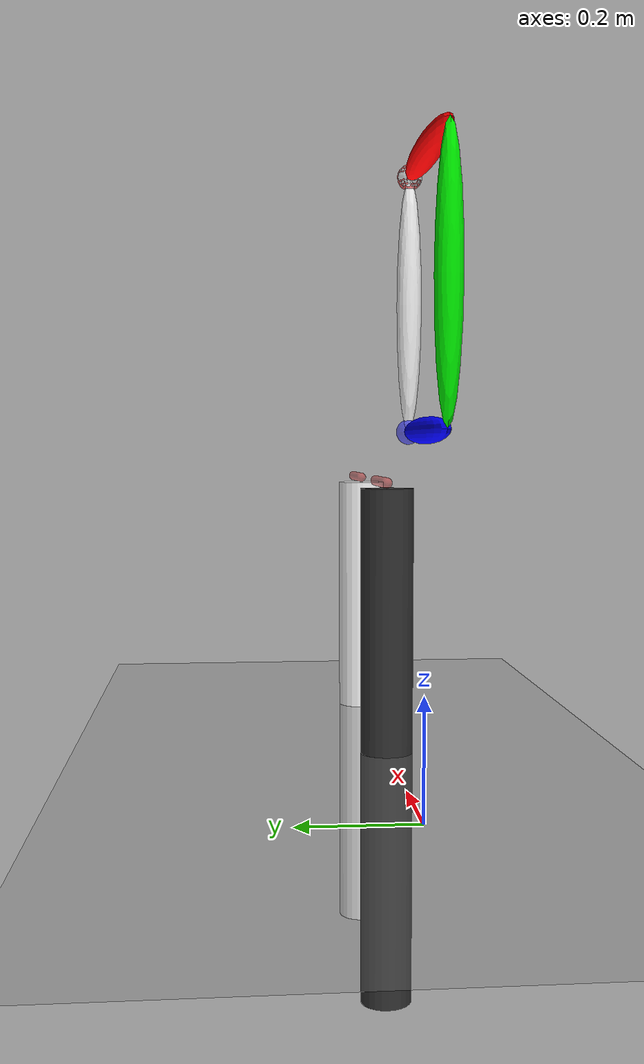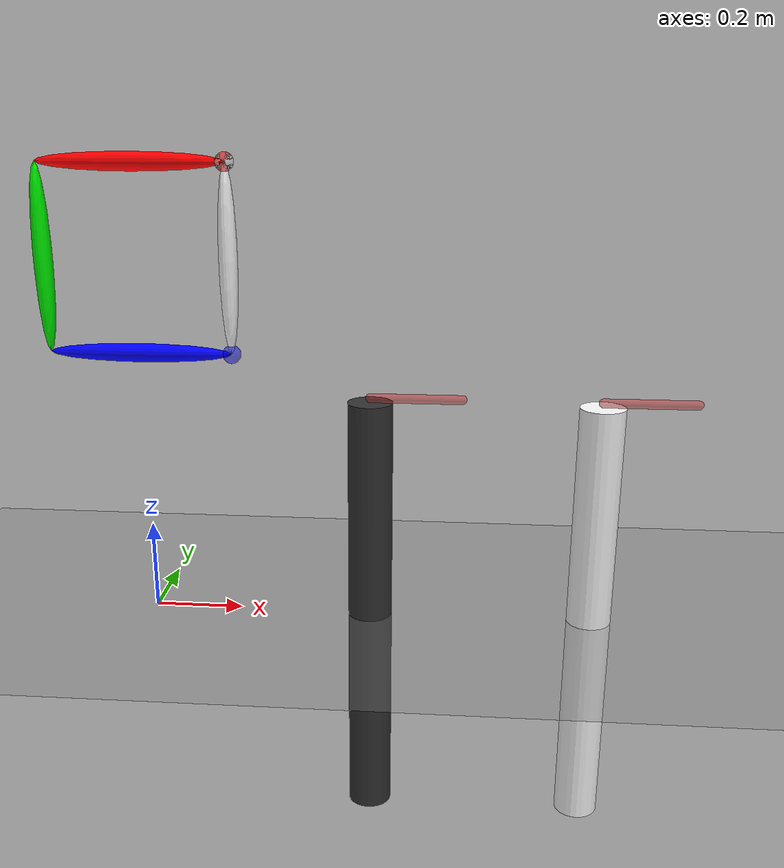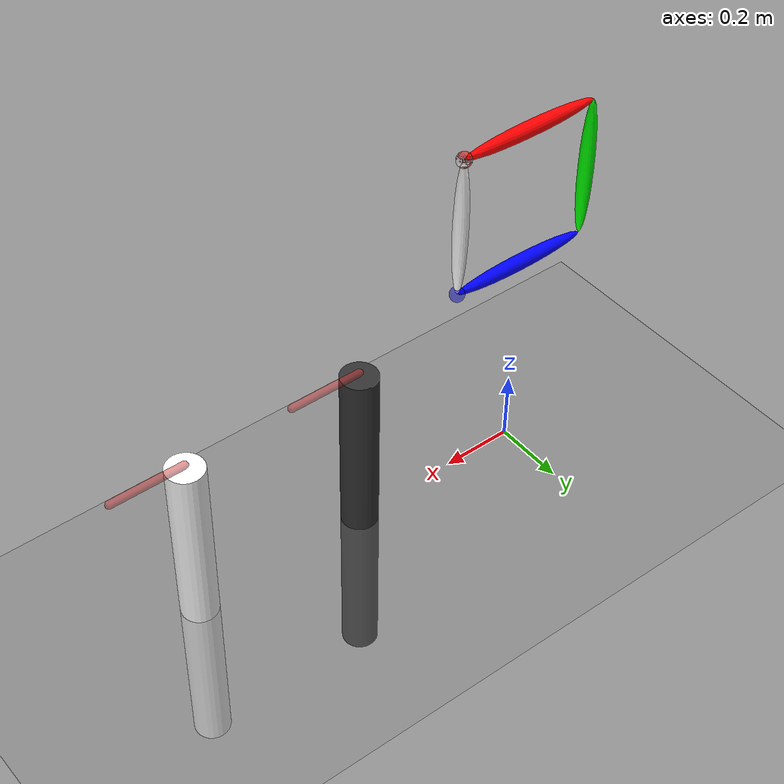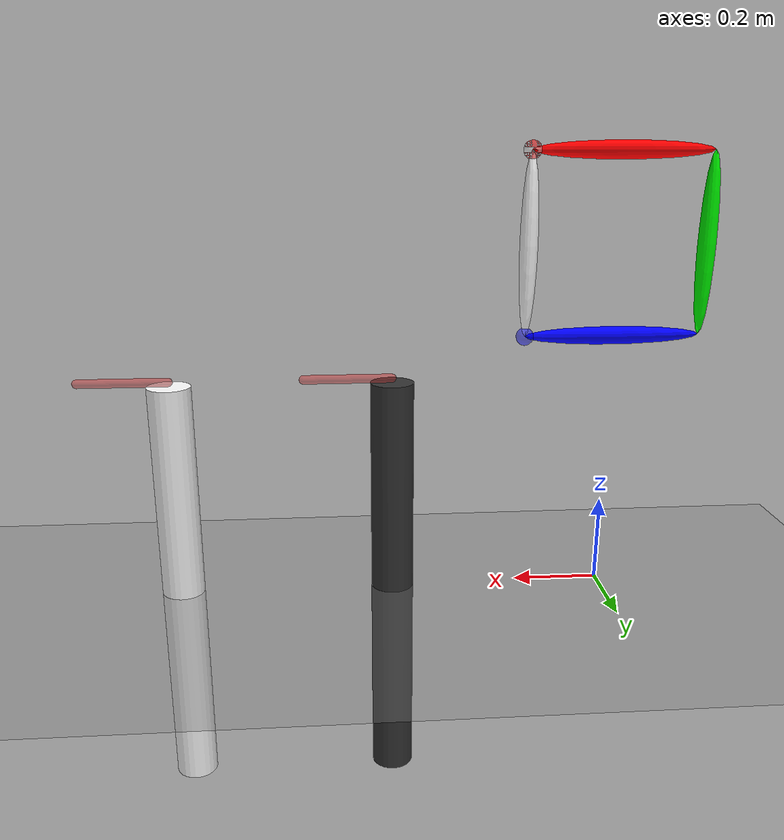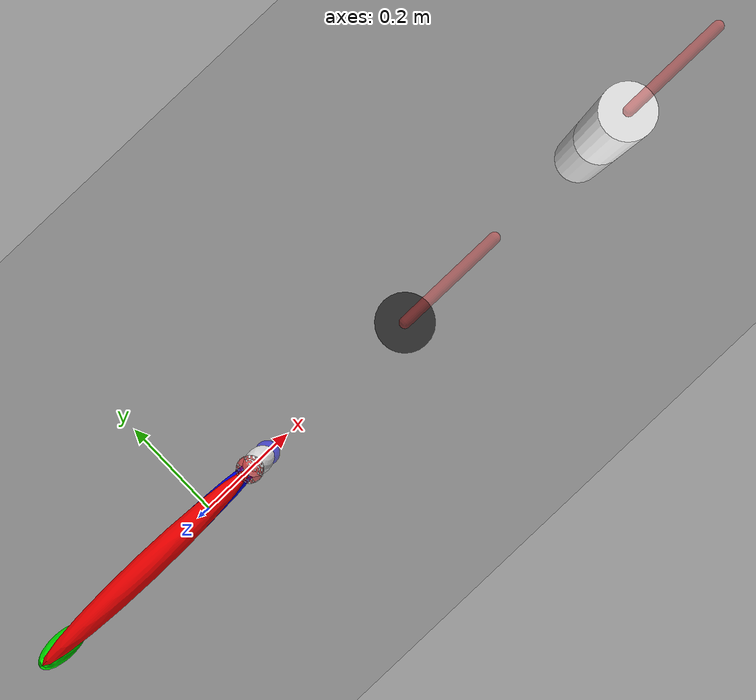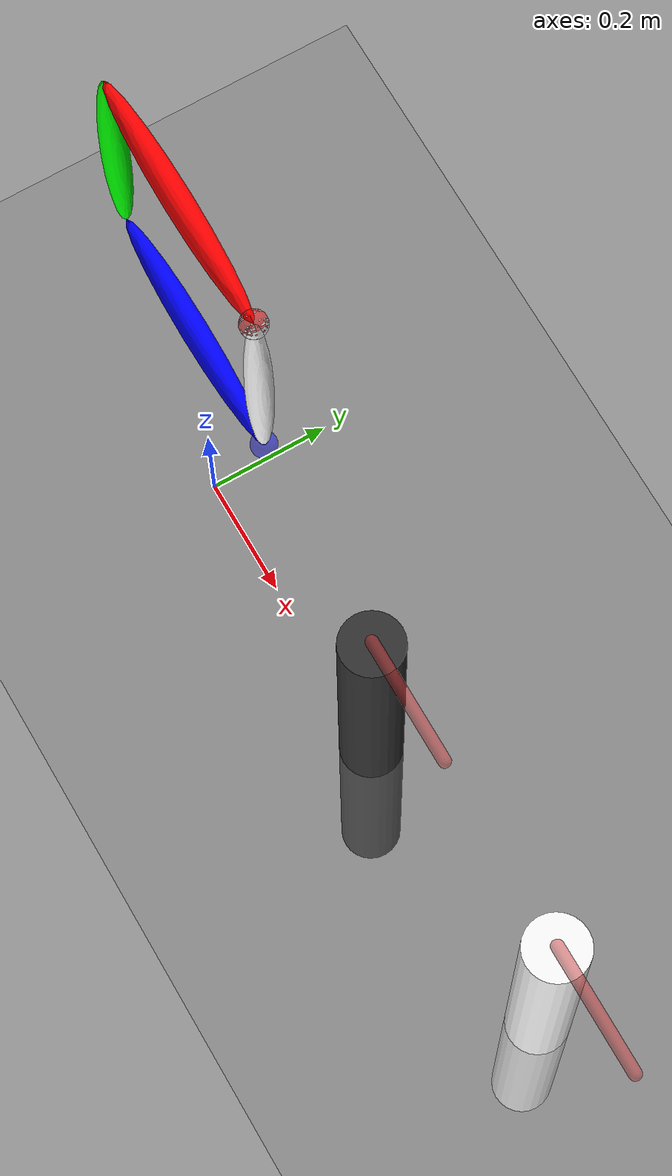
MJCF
<mujoco>
    <asset>
        <mesh name="tetrahedron" vertex="0 0 0 1 0 0 0 1 0 0 0 1" />
        <texture type="skybox" file="../asset/desert.png"
            gridsize="3 4" gridlayout=".U..LFRB.D.." />
        <texture name="plane" type="2d" builtin="checker" rgb1=".1 .1 .1" rgb2=".9 .9 .9"
            width="512" height="512" mark="cross" markrgb=".8 .8 .8" />
        <material name="plane" reflectance="0.3" texture="plane" texrepeat="1 1" texuniform="true" />
    </asset>

    <worldbody>
        <geom name="floor" pos="0 0 0" size="0 0 .25" type="plane" material="plane"
            condim="3" />
        <light directional="true" ambient=".3 .3 .3" pos="30 30 30" dir="0 -.5 -1"
            diffuse=".5 .5 .5" specular=".5 .5 .5" />

        <body name="red_b" pos="0 0 1">
            <geom type="ellipsoid" size="0.2 0.02 0.02" rgba="1 0 0 1" />
            <site name="red_connect" size="0.02" rgba="1 0 0 .5" pos="0.2 0 0" />
            <body name="green_b" pos="-0.2 0 -0.2" euler="0 90 0">
                <geom type="ellipsoid" size="0.2 0.02 0.02" rgba="0 1 0 1" contype="2"
                    conaffinity="2" />
                <joint name="j0" type="hinge" pos="-0.2 0 0" axis="0 1 0" damping="0" />
                <body name="blue_b" pos="0.2 0 0.2" euler="0 -90 0">
                    <geom type="ellipsoid" size="0.2 0.02 0.02" rgba="0 0 1 1" />
                    <site name="blue_connect" size="0.02" rgba="0 0 1 .5" pos="0.2 0 0" />
                    <joint name="j1" type="hinge" pos="-0.2 0 0" axis="0 1 0" damping="0" />
                    <body name="white_b" pos="0.2 0 0.2" euler="0 -90 0">
                        <geom type="ellipsoid" size="0.2 0.02 0.02" rgba="1 1 1 1" contype="2"
                            conaffinity="2" />
                        <site name="white_connect" size="0.02" rgba="1 1 1 .5" pos="0.2 0 0" />
                        <joint name="j2" type="hinge" pos="-0.2 0 0" axis="0 1 0" damping="0" />
                    </body>
                </body>
            </body>
        </body>

        <body pos="0.5 0 0">
            <geom type="cylinder" mass="100" size="0.05 0.5" rgba="0.2 0.2 0.2 1" />
            <body pos="0 0 0.51">
                <joint type="hinge" name="pivot1" pos="0 0 0" axis="0 0 1" damping="0"
                    frictionloss="0" stiffness="0" />
                <geom type="capsule" mass="0.01" fromto="0 0 0 0.2 0 0" size="0.01"
                    rgba="0.8 0.2 0.2 0.5" />
            </body>
        </body>

        <body pos="1 0 0">
            <geom type="cylinder" mass="100" size="0.05 0.5" rgba="1 1 1 1" />
            <body pos="0 0 0.51">
                <joint type="hinge" name="pivot2" pos="0 0 0" axis="0 0 1" damping="0"
                    frictionloss="0.0" stiffness="0" />
                <geom type="capsule" mass="0.01" fromto="0 0 0 0.2 0 0" size="0.01"
                    rgba="0.8 0.2 0.2 0.5" />
            </body>
        </body>

    </worldbody>

    <equality>

        <weld site1="red_connect" site2="white_connect" torquescale="0"/>

        <joint joint1="pivot1" joint2="pivot2" polycoef="0 1 0 0 1"/>
    </equality>

    <tendon>
        <fixed name="open">
            <joint joint="j0" coef="1" />
            <joint joint="j2" coef="1" />
        </fixed>
    </tendon>

    <actuator>
        <position name="connect" tendon="open" kp="2" kv="0.1" ctrlrange="-10 10" />
        <position name="joint" joint="pivot2" kp="2" kv="0.1" ctrlrange="-1 1" />
    </actuator>
</mujoco>
